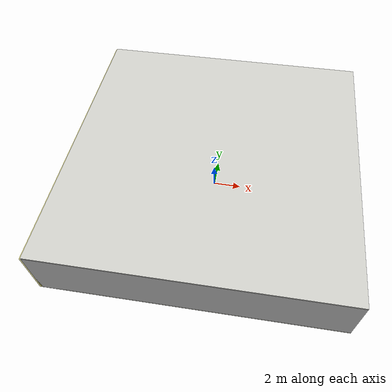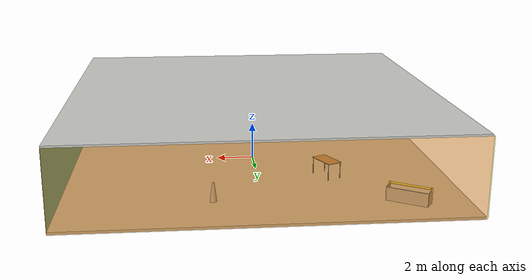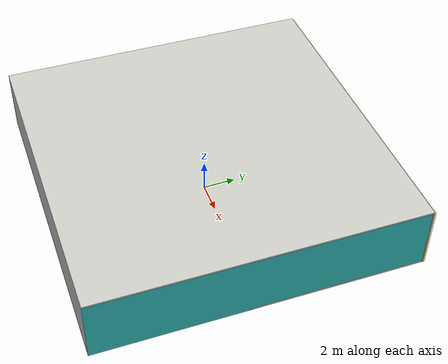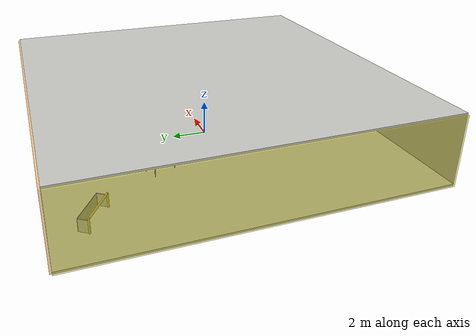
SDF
<sdf version="1.4">
 <world name="default">
  <physics type="ode">
   <max_step_size>0.001</max_step_size>
   <real_time_factor>1</real_time_factor>
   <real_time_update_rate>1000</real_time_update_rate>
   <gravity>0 0 -9.8</gravity>
  </physics>
  <scene><ambient>0.4 0.4 0.4 1</ambient><background>0.7 0.7 0.7 1</background><shadows>1</shadows></scene>
  <model name="Surrounding">
   <static>1</static>
   <link name="Ceiling">
    <collision name="Ceiling_Collision"><geometry><box><size>20 20 0.1</size></box></geometry></collision>
    <visual name="Ceiling_Visual">
     <geometry><box><size>20 20 0.1</size></box></geometry>
     <material>
      <script><uri>file://media/materials/scripts/gazebo.material</uri><name>Gazebo/CeilingTiled</name></script>
     </material>
    </visual>
    <pose>0 0 4.05 0 0 0</pose>
   </link>
   <link name="Wall_South">
    <collision name="Wall_South_Collision">
     <geometry><box><size>20 0 4</size></box></geometry>
     <pose>0 0 2 0 -0 0</pose>
    </collision>
    <visual name="Wall_South_Visual">
     <pose>0 0 2 0 -0 0</pose>
     <geometry><box><size>20 0 4</size></box></geometry>
     <material>
      <script><uri>file://media/materials/scripts/gazebo.material</uri><name>Gazebo/PioneerBody</name></script>
     </material>
    </visual>
    <velocity_decay><linear>0</linear><angular>0</angular></velocity_decay>
    <pose>0 -10 0 0 -0 0</pose>
   </link>
   <link name="Wall_East">
    <collision name="Wall_21_Collision">
     <geometry><box><size>20 0 4</size></box></geometry>
     <pose>0 0 2 0 -0 0</pose>
    </collision>
    <visual name="Wall_21_Visual">
     <pose>0 0 2 0 -0 0</pose>
     <geometry><box><size>20 0 4</size></box></geometry>
     <material>
      <script><uri>file://media/materials/scripts/gazebo.material</uri><name>Gazebo/TurquoiseGlow</name></script>
     </material>
    </visual>
    <velocity_decay><linear>0</linear><angular>0</angular></velocity_decay>
    <pose>10 0 0 0 -0 1.5708</pose>
   </link>
   <link name="Wall_North">
    <collision name="Wall_22_Collision">
     <geometry><box><size>20 0.2 4</size></box></geometry>
     <pose>0 0 2 0 -0 0</pose>
    </collision>
    <visual name="Wall_22_Visual">
     <pose>0 0 2 0 -0 0</pose>
     <geometry><box><size>20 0.2 4</size></box></geometry>
     <material>
      <script>
       <uri>file://media/materials/scripts/gazebo.material</uri>
       <name>Gazebo/OrangeTransparent</name>
      </script>
     </material>
    </visual>
    <velocity_decay><linear>0</linear><angular>0</angular></velocity_decay>
    <pose>0 10 0 0 -0 0</pose>
   </link>
   <link name="Wall_West">
    <collision name="Wall_23_Collision">
     <geometry><box><size>20 0.2 4</size></box></geometry>
     <pose>0 0 2 0 -0 0</pose>
    </collision>
    <visual name="Wall_23_Visual">
     <pose>0 0 2 0 -0 0</pose>
     <geometry><box><size>20 0.2 4</size></box></geometry>
     <material>
      <script>
       <uri>file://media/materials/scripts/gazebo.material</uri>
       <name>Gazebo/YellowTransparent</name>
      </script>
     </material>
    </visual>
    <velocity_decay><linear>0</linear><angular>0</angular></velocity_decay>
    <pose>-10 0 0 0 0 -1.5708</pose>
   </link>
   <link name="Ground_link">
    <collision name="collision">
     <pose>0 0 .05 0 -0 0</pose>
     <geometry><box><size>20 20 0.1</size></box></geometry>
    </collision>
    <visual name="visual">
     <pose>0 0 .05 0 -0 0</pose>
     <geometry><box><size>20 20 0.1</size></box></geometry>
     <material>
      <script><uri>file://media/materials/scripts/gazebo.material</uri><name>Gazebo/PaintedWall</name></script>
     </material>
    </visual>
   </link>
   <static>1</static>
  </model>
  <spherical_coordinates>
   <surface_model>EARTH_WGS84</surface_model>
   <latitude_deg>0</latitude_deg>
   <longitude_deg>0</longitude_deg>
   <elevation>0</elevation>
   <heading_deg>0</heading_deg>
  </spherical_coordinates>
  <light name="lightball_0" type="diffuse">
   <diffuse>0.8 0.8 0.8 1</diffuse>
   <specular>0.2 0.2 0.2 1</specular>
   <attenuation>
    <range>100</range>
    <constant>0.7</constant>
    <linear>0.01</linear>
    <quadratic>0.001</quadratic>
   </attenuation>
   <direction>-0.5 0.1 -0.9</direction>
   <pose>1.23187283916 -2.9995432771 0.820430234676 0 0 0</pose>
  </light>
  <light name="lightball_1" type="diffuse">
   <diffuse>0.8 0.8 0.8 1</diffuse>
   <specular>0.2 0.2 0.2 1</specular>
   <attenuation>
    <range>100</range>
    <constant>0.7</constant>
    <linear>0.01</linear>
    <quadratic>0.001</quadratic>
   </attenuation>
   <direction>-0.5 0.1 -0.9</direction>
   <pose>6.05960609752 -0.75615443188 1.92722295871 0 0 0</pose>
  </light>
  <light name="lightball_2" type="diffuse">
   <diffuse>0.8 0.8 0.8 1</diffuse>
   <specular>0.2 0.2 0.2 1</specular>
   <attenuation>
    <range>100</range>
    <constant>0.7</constant>
    <linear>0.01</linear>
    <quadratic>0.001</quadratic>
   </attenuation>
   <direction>-0.5 0.1 -0.9</direction>
   <pose>5.97754032632 -1.14673541825 0.73552645618 0 0 0</pose>
  </light>
  <light name="lightball_3" type="diffuse">
   <diffuse>0.8 0.8 0.8 1</diffuse>
   <specular>0.2 0.2 0.2 1</specular>
   <attenuation>
    <range>100</range>
    <constant>0.7</constant>
    <linear>0.01</linear>
    <quadratic>0.001</quadratic>
   </attenuation>
   <direction>-0.5 0.1 -0.9</direction>
   <pose>9.90385113983 -9.51961860327 2.58922274836 0 0 0</pose>
  </light>
  <light name="lightball_4" type="diffuse">
   <diffuse>0.8 0.8 0.8 1</diffuse>
   <specular>0.2 0.2 0.2 1</specular>
   <attenuation>
    <range>100</range>
    <constant>0.7</constant>
    <linear>0.01</linear>
    <quadratic>0.001</quadratic>
   </attenuation>
   <direction>-0.5 0.1 -0.9</direction>
   <pose>-4.36764862811 -5.48304314874 1.17223149606 0 0 0</pose>
  </light>
  <include>
   <uri>model://robocup_3Dsim_goal</uri>
   <pose>-7.08013272934 7.61215834787 0 0 0 0.9976463404</pose>
  </include>
  <include><uri>model://table</uri><pose>-3.63072625491 3.78201041425 0 0 0 2.02106353975</pose></include>
  <include><uri>model://cabinet</uri><pose>-0.786441800378 -3.41086915638 0 0 0 1.05743283505</pose></include>
  <include>
   <uri>model://construction_cone</uri>
   <pose>2.52403506875 6.96435162587 0 0 0 1.10702290072</pose>
  </include>
  <include>
   <uri>model://construction_cone</uri>
   <pose>8.13372207226 -6.66498256627 0 0 0 1.91693427895</pose>
  </include>
 </world>
</sdf>

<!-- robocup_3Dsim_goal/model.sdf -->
<sdf version="1.5">
  <model name="robocup_3d_goal">
    <static>true</static>
    <link name="left_post">
      <pose>0 1.05 0.45 0 0 0</pose>
      <collision name="collision">
        <geometry>
          <cylinder>
            <radius>0.05</radius>
            <length>0.9</length>
          </cylinder>
        </geometry>
      </collision>
      <visual name="visual">
        <geometry>
          <cylinder>
            <radius>0.05</radius>
            <length>0.9</length>
          </cylinder>
        </geometry>
        <material>
          <script>
            <uri>file://media/materials/scripts/gazebo.material</uri>
            <name>Gazebo/ZincYellow</name>
          </script>
        </material>
      </visual>
    </link>
    <link name="left_support_horiz_lower">
      <pose>0.30 1.05 0.01 0 0 0</pose>
      <collision name="collision">
        <geometry>
          <box>
            <size>0.50 0.02 0.02</size>
          </box>
        </geometry>
      </collision>
      <visual name="visual">
        <geometry>
          <box>
            <size>0.50 0.02 0.02</size>
          </box>
        </geometry>
        <material>
          <script>
            <uri>file://media/materials/scripts/gazebo.material</uri>
            <name>Gazebo/White</name>
          </script>
        </material>
      </visual>
    </link>
    <link name="left_support_horiz_upper">
      <pose>0.30 1.05 0.79 0 0 0</pose>
      <collision name="collision">
        <geometry>
          <box>
            <size>0.50 0.02 0.02</size>
          </box>
        </geometry>
      </collision>
      <visual name="visual">
        <geometry>
          <box>
            <size>0.50 0.02 0.02</size>
          </box>
        </geometry>
        <material>
          <script>
            <uri>file://media/materials/scripts/gazebo.material</uri>
            <name>Gazebo/White</name>
          </script>
        </material>
      </visual>
    </link>
    <link name="left_support_vertical">
      <pose>0.56 1.05 0.4 0 1.5708 0</pose>
      <collision name="collision">
        <geometry>
          <box>
            <size>0.80 0.02 0.02</size>
          </box>
        </geometry>
      </collision>
      <visual name="visual">
        <geometry>
          <box>
            <size>0.80 0.02 0.02</size>
          </box>
        </geometry>
        <material>
          <script>
            <uri>file://media/materials/scripts/gazebo.material</uri>
            <name>Gazebo/White</name>
          </script>
        </material>
      </visual>
    </link>
    <link name="right_support_horiz_lower">
      <pose>0.30 -1.05 0.01 0 0 0</pose>
      <collision name="collision">
        <geometry>
          <box>
            <size>0.50 0.02 0.02</size>
          </box>
        </geometry>
      </collision>
      <visual name="visual">
        <geometry>
          <box>
            <size>0.50 0.02 0.02</size>
          </box>
        </geometry>
        <material>
          <script>
            <uri>file://media/materials/scripts/gazebo.material</uri>
            <name>Gazebo/White</name>
          </script>
        </material>
      </visual>
    </link>
    <link name="right_support_horiz_upper">
      <pose>0.30 -1.05 0.79 0 0 0</pose>
      <collision name="collision">
        <geometry>
          <box>
            <size>0.50 0.02 0.02</size>
          </box>
        </geometry>
      </collision>
      <visual name="visual">
        <geometry>
          <box>
            <size>0.50 0.02 0.02</size>
          </box>
        </geometry>
        <material>
          <script>
            <uri>file://media/materials/scripts/gazebo.material</uri>
            <name>Gazebo/White</name>
          </script>
        </material>
      </visual>
    </link>
    <link name="right_support_vertical">
      <pose>0.56 -1.05 0.4 0 1.5708 0</pose>
      <collision name="collision">
        <geometry>
          <box>
            <size>0.80 0.02 0.02</size>
          </box>
        </geometry>
      </collision>
      <visual name="visual">
        <geometry>
          <box>
            <size>0.80 0.02 0.02</size>
          </box>
        </geometry>
        <material>
          <script>
            <uri>file://media/materials/scripts/gazebo.material</uri>
            <name>Gazebo/White</name>
          </script>
        </material>
      </visual>
    </link>
    <link name="center_support_horiz_lower">
      <pose>0.56 0 0.01 0 1.5708 0</pose>
      <collision name="collision">
        <geometry>
          <box>
            <size>0.02 2.08 0.02</size>
          </box>
        </geometry>
      </collision>
      <visual name="visual">
        <geometry>
          <box>
            <size>0.02 2.08 0.02</size>
          </box>
        </geometry>
        <material>
          <script>
            <uri>file://media/materials/scripts/gazebo.material</uri>
            <name>Gazebo/White</name>
          </script>
        </material>
      </visual>
    </link>
    <link name="center_support_horiz_upper">
      <pose>0.56 0 0.79 0 1.5708 0</pose>
      <collision name="collision">
        <geometry>
          <box>
            <size>0.02 2.08 0.02</size>
          </box>
        </geometry>
      </collision>
      <visual name="visual">
        <geometry>
          <box>
            <size>0.02 2.08 0.02</size>
          </box>
        </geometry>
        <material>
          <script>
            <uri>file://media/materials/scripts/gazebo.material</uri>
            <name>Gazebo/White</name>
          </script>
        </material>
      </visual>
    </link>
    <link name="right_post">
      <pose>0 -1.05 0.45 0 0 0</pose>
      <collision name="collision">
        <geometry>
          <cylinder>
            <radius>0.05</radius>
            <length>0.9</length>
          </cylinder>
        </geometry>
      </collision>
      <visual name="visual">
        <geometry>
          <cylinder>
            <radius>0.05</radius>
            <length>0.9</length>
          </cylinder>
        </geometry>
        <material>
          <script>
            <uri>file://media/materials/scripts/gazebo.material</uri>
            <name>Gazebo/ZincYellow</name>
          </script>
        </material>
      </visual>
    </link>
    <link name="crossbar">
      <pose>0 0 0.85 1.57 1.57 0</pose>
      <collision name="collision">
        <geometry>
          <cylinder>
            <radius>0.05</radius>
            <length>2.0</length>
          </cylinder>
        </geometry>
      </collision>
      <visual name="visual">
        <geometry>
          <cylinder>
            <radius>0.05</radius>
            <length>2.0</length>
          </cylinder>
        </geometry>
        <material>
          <script>
            <uri>file://media/materials/scripts/gazebo.material</uri>
            <name>Gazebo/ZincYellow</name>
          </script>
        </material>
      </visual>
    </link>
    <link name="center_net">
      <pose>0.56 0 0.40 0 0 0</pose>
      <collision name="collision">
        <geometry>
          <box>
            <size>0.01 2.1 0.80</size>
          </box>
        </geometry>
      </collision>
      <visual name="visual">
        <geometry>
          <box>
            <size>0.01 2.1 0.80</size>
          </box>
        </geometry>
        <material>
          <script>
            <uri>model://../model_source/models/robocup09_spl_field/materials/scripts/</uri>
            <uri>model://../model_source/models/robocup09_spl_field/materials/textures/</uri>
            <name>RoboCup/Net</name>
          </script>
        </material>
      </visual>
    </link>
    <link name="left_net">
      <pose>0.30 1.05 0.40 0 0 0</pose>
      <collision name="collision">
        <geometry>
          <box>
            <size>0.50 0.01 0.76</size>
          </box>
        </geometry>
      </collision>
      <visual name="visual">
        <geometry>
          <box>
            <size>0.50 0.01 0.76</size>
          </box>
        </geometry>
        <material>
          <script>
            <uri>model://../model_source/models/robocup09_spl_field/materials/scripts/</uri>
            <uri>model://../model_source/models/robocup09_spl_field/materials/textures/</uri>
            <name>RoboCup/Net</name>
          </script>
        </material>
      </visual>
    </link>
    <link name="right_net">
      <pose>0.30 -1.05 0.40 0 0 0</pose>
      <collision name="collision">
        <geometry>
          <box>
            <size>0.50 0.01 0.76</size>
          </box>
        </geometry>
      </collision>
      <visual name="visual">
        <geometry>
          <box>
            <size>0.50 0.01 0.76</size>
          </box>
        </geometry>
        <material>
          <script>
            <uri>model://../model_source/models/robocup09_spl_field/materials/scripts/</uri>
            <uri>model://../model_source/models/robocup09_spl_field/materials/textures/</uri>
            <name>RoboCup/Net</name>
          </script>
        </material>
      </visual>
    </link>
  </model>
</sdf>

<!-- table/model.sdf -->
<sdf version="1.5">
  <model name="table">
    <static>true</static>
    <link name="link">
      <collision name="surface">
        <pose>0 0 1.0 0 0 0</pose>
        <geometry>
          <box>
            <size>1.5 0.8 0.03</size>
          </box>
        </geometry>
        <surface>
          <friction>
            <ode>
              <mu>0.6</mu>
              <mu2>0.6</mu2>
            </ode>
          </friction>
        </surface>
      </collision>
      <visual name="visual1">
        <pose>0 0 1.0 0 0 0</pose>
        <geometry>
          <box>
            <size>1.5 0.8 0.03</size>
          </box>
        </geometry>
        <material>
          <script>
            <uri>model://media/materials/scripts/gazebo.material</uri>
            <name>Gazebo/Wood</name>
          </script>
        </material>
      </visual>
      <collision name="front_left_leg">
        <pose>0.68 0.38 0.5 0 0 0</pose>
        <geometry>
          <cylinder>
            <radius>0.02</radius>
            <length>1.0</length>
          </cylinder>
        </geometry>
      </collision>
      <visual name="front_left_leg">
        <pose>0.68 0.38 0.5 0 0 0</pose>
        <geometry>
          <cylinder>
            <radius>0.02</radius>
            <length>1.0</length>
          </cylinder>
        </geometry>
        <material>
          <script>
            <uri>model://media/materials/scripts/gazebo.material</uri>
            <name>Gazebo/Grey</name>
          </script>
        </material>
      </visual>
      <collision name="front_right_leg">
        <pose>0.68 -0.38 0.5 0 0 0</pose>
        <geometry>
          <cylinder>
            <radius>0.02</radius>
            <length>1.0</length>
          </cylinder>
        </geometry>
      </collision>
      <visual name="front_right_leg">
        <pose>0.68 -0.38 0.5 0 0 0</pose>
        <geometry>
          <cylinder>
            <radius>0.02</radius>
            <length>1.0</length>
          </cylinder>
        </geometry>
        <material>
          <script>
            <uri>model://media/materials/scripts/gazebo.material</uri>
            <name>Gazebo/Grey</name>
          </script>
        </material>
      </visual>
      <collision name="back_right_leg">
        <pose>-0.68 -0.38 0.5 0 0 0</pose>
        <geometry>
          <cylinder>
            <radius>0.02</radius>
            <length>1.0</length>
          </cylinder>
        </geometry>
      </collision>
      <visual name="back_right_leg">
        <pose>-0.68 -0.38 0.5 0 0 0</pose>
        <geometry>
          <cylinder>
            <radius>0.02</radius>
            <length>1.0</length>
          </cylinder>
        </geometry>
        <material>
          <script>
            <uri>model://media/materials/scripts/gazebo.material</uri>
            <name>Gazebo/Grey</name>
          </script>
        </material>
      </visual>
      <collision name="back_left_leg">
        <pose>-0.68 0.38 0.5 0 0 0</pose>
        <geometry>
          <cylinder>
            <radius>0.02</radius>
            <length>1.0</length>
          </cylinder>
        </geometry>
      </collision>
      <visual name="back_left_leg">
        <pose>-0.68 0.38 0.5 0 0 0</pose>
        <geometry>
          <cylinder>
            <radius>0.02</radius>
            <length>1.0</length>
          </cylinder>
        </geometry>
        <material>
          <script>
            <uri>model://media/materials/scripts/gazebo.material</uri>
            <name>Gazebo/Grey</name>
          </script>
        </material>
      </visual>
    </link>
  </model>
</sdf>

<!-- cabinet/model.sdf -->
<sdf version="1.5">
  <model name="cabinet">
    <static>true</static>
    <link name="cabinet_bottom_plate">
      <inertial>
        <pose>0 0 -1 0 0 0</pose>
        <inertia>
          <ixx>2.050000</ixx>
          <ixy>0</ixy>
          <ixz>0</ixz>
          <iyy>2.050000</iyy>
          <iyz>0</iyz>
          <izz>2.050000</izz>
        </inertia>
        <mass>25.000000</mass>
      </inertial>
      <collision name="cabinet_bottom_plate_geom">
        <pose>0 0 0.010000 0 0 0</pose>
        <geometry>
          <box>
            <size>0.450000 0.450000 0.020000</size>
          </box>
        </geometry>
      </collision>
      <visual name="cabinet_bottom_plate_geom_visual">
        <pose>0 0 0.010000 0 0 0</pose>
        <geometry>
          <box>
            <size>0.450000 0.450000 0.020000</size>
          </box>
        </geometry>
        <material>
          <script>
            <uri>model://media/materials/scripts/gazebo.material</uri>
            <name>Gazebo/Wood</name>
          </script>
        </material>
      </visual>
      <collision name="cabinet_bottom_plate_geom_cabinet_back_plate">
        <pose>0.235000 0 0.510000 0 0 0</pose>
        <geometry>
          <box>
            <size>0.020000 0.450000 1.020000</size>
          </box>
        </geometry>
      </collision>
      <visual name="cabinet_bottom_plate_geom_cabinet_back_plate_visual">
        <pose>0.235000 0 0.510000 0 0 0</pose>
        <geometry>
          <box>
            <size>0.020000 0.450000 1.020000</size>
          </box>
        </geometry>
        <material>
          <script>
            <uri>model://media/materials/scripts/gazebo.material</uri>
            <name>Gazebo/Wood</name>
          </script>
        </material>
      </visual>
      <collision name="cabinet_bottom_plate_geom_cabinet_left_plate">
        <pose>0 0.235000 0.510000 0 0 0</pose>
        <geometry>
          <box>
            <size>0.450000 0.020000 1.020000</size>
          </box>
        </geometry>
      </collision>
      <visual name="cabinet_bottom_plate_geom_cabinet_left_plate_visual">
        <pose>0 0.235000 0.510000 0 0 0</pose>
        <geometry>
          <box>
            <size>0.450000 0.020000 1.020000</size>
          </box>
        </geometry>
        <material>
          <script>
            <uri>model://media/materials/scripts/gazebo.material</uri>
            <name>Gazebo/Wood</name>
          </script>
        </material>
      </visual>
      <collision name="cabinet_bottom_plate_geom_cabinet_middle_plate">
        <pose>0 0 0.510000 0 0 0</pose>
        <geometry>
          <box>
            <size>0.450000 0.450000 0.020000</size>
          </box>
        </geometry>
      </collision>
      <visual name="cabinet_bottom_plate_geom_cabinet_middle_plate_visual">
        <pose>0 0 0.510000 0 0 0</pose>
        <geometry>
          <box>
            <size>0.450000 0.450000 0.020000</size>
          </box>
        </geometry>
        <material>
          <script>
            <uri>model://media/materials/scripts/gazebo.material</uri>
            <name>Gazebo/Wood</name>
          </script>
        </material>
      </visual>
      <collision name="cabinet_bottom_plate_geom_cabinet_right_plate">
        <pose>0 -0.235000 0.510000 0 0 0</pose>
        <geometry>
          <box>
            <size>0.450000 0.020000 1.020000</size>
          </box>
        </geometry>
      </collision>
      <visual name="cabinet_bottom_plate_geom_cabinet_right_plate_visual">
        <pose>0 -0.235000 0.510000 0 0 0</pose>
        <geometry>
          <box>
            <size>0.450000 0.020000 1.020000</size>
          </box>
        </geometry>
        <material>
          <script>
            <uri>model://media/materials/scripts/gazebo.material</uri>
            <name>Gazebo/Wood</name>
          </script>
        </material>
      </visual>
      <collision name="cabinet_bottom_plate_geom_cabinet_top_plate">
        <pose>0 0 1.010000 0 0 0</pose>
        <geometry>
          <box>
            <size>0.450000 0.450000 0.020000</size>
          </box>
        </geometry>
      </collision>
      <visual name="cabinet_bottom_plate_geom_cabinet_top_plate_visual">
        <pose>0 0 1.010000 0 0 0</pose>
        <geometry>
          <box>
            <size>0.450000 0.450000 0.020000</size>
          </box>
        </geometry>
        <material>
          <script>
            <uri>model://media/materials/scripts/gazebo.material</uri>
            <name>Gazebo/Wood</name>
          </script>
        </material>
      </visual>
    </link>
  </model>
</sdf>

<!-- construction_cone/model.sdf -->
<sdf version="1.5">
  <model name="Construction Cone">
    <link name="link">
      <collision name="collision">
        <geometry>
          <mesh>
            <scale>10 10 10</scale>
            <uri>file://isr-testbed/construction_cone/meshes/construction_cone.dae</uri>
          </mesh>
        </geometry>
      </collision>
      <visual name="visual">
        <geometry>
          <mesh>
            <scale>10 10 10</scale>
            <uri>file://isr-testbed/construction_cone/meshes/construction_cone.dae</uri>
          </mesh>
        </geometry>
      </visual>
    </link>
  </model>
</sdf>
